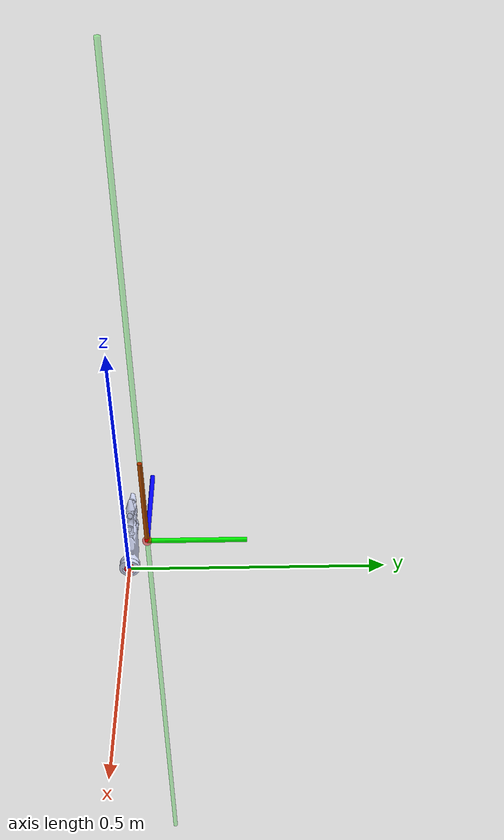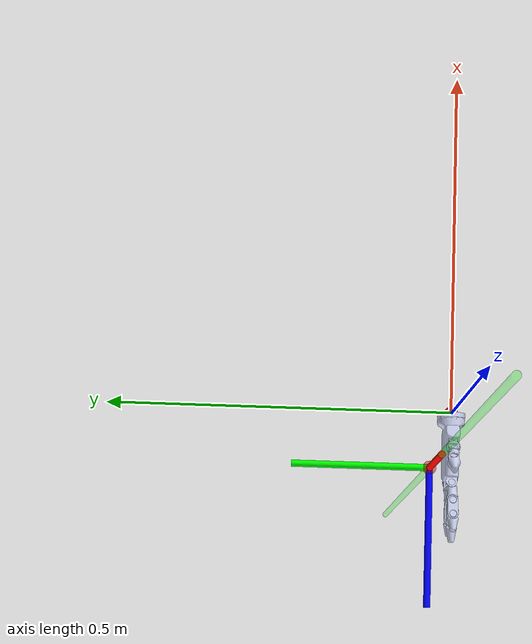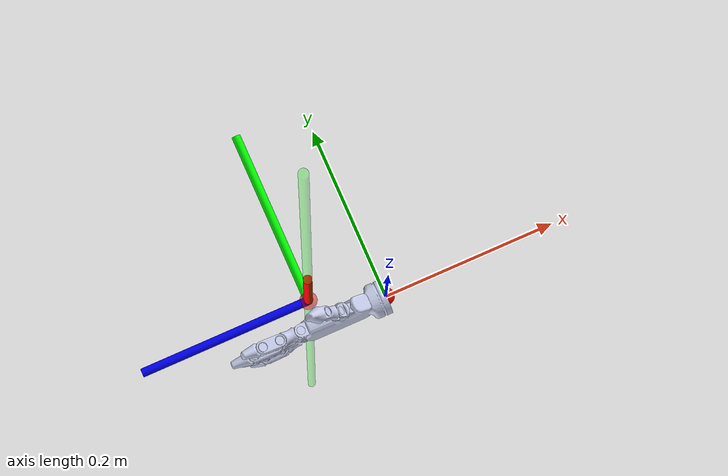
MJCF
<mujoco model="hand_left_sim">
    <compiler angle="radian" meshdir="/home/kavin/Documents/RosProjects/robot_ws/src/hand_left_sim/meshes/" />

    <default>
        <default class="joint">
            <position kp="8"/>
        </default>
    </default>

    <size njmax="500" nconmax="100" />
    <asset>
        <mesh name="palm_left" file="/home/kavin/Documents/RosProjects/robot_ws/src/hand_left_sim/meshes/palm_left.STL" />
        <mesh name="finger_11_left" file="/home/kavin/Documents/RosProjects/robot_ws/src/hand_left_sim/meshes/finger_11_left.STL" />
        <mesh name="finger_12_left" file="/home/kavin/Documents/RosProjects/robot_ws/src/hand_left_sim/meshes/finger_12_left.STL" />
        <mesh name="finger_13_left" file="/home/kavin/Documents/RosProjects/robot_ws/src/hand_left_sim/meshes/finger_13_left.STL" />
        <mesh name="finger_14_left" file="/home/kavin/Documents/RosProjects/robot_ws/src/hand_left_sim/meshes/finger_14_left.STL" />
        <mesh name="finger_21_left" file="/home/kavin/Documents/RosProjects/robot_ws/src/hand_left_sim/meshes/finger_21_left.STL" />
        <mesh name="finger_22_left" file="/home/kavin/Documents/RosProjects/robot_ws/src/hand_left_sim/meshes/finger_22_left.STL" />
        <mesh name="finger_23_left" file="/home/kavin/Documents/RosProjects/robot_ws/src/hand_left_sim/meshes/finger_23_left.STL" />
        <mesh name="finger_31_left" file="/home/kavin/Documents/RosProjects/robot_ws/src/hand_left_sim/meshes/finger_31_left.STL" />
        <mesh name="finger_32_left" file="/home/kavin/Documents/RosProjects/robot_ws/src/hand_left_sim/meshes/finger_32_left.STL" />
        <mesh name="finger_33_left" file="/home/kavin/Documents/RosProjects/robot_ws/src/hand_left_sim/meshes/finger_33_left.STL" />
        <mesh name="finger_41_left" file="/home/kavin/Documents/RosProjects/robot_ws/src/hand_left_sim/meshes/finger_41_left.STL" />
        <mesh name="finger_42_left" file="/home/kavin/Documents/RosProjects/robot_ws/src/hand_left_sim/meshes/finger_42_left.STL" />
        <mesh name="finger_43_left" file="/home/kavin/Documents/RosProjects/robot_ws/src/hand_left_sim/meshes/finger_43_left.STL" />
        <mesh name="finger_51_left" file="/home/kavin/Documents/RosProjects/robot_ws/src/hand_left_sim/meshes/finger_51_left.STL" />
        <mesh name="finger_52_left" file="/home/kavin/Documents/RosProjects/robot_ws/src/hand_left_sim/meshes/finger_52_left.STL" />
        <mesh name="finger_53_left" file="/home/kavin/Documents/RosProjects/robot_ws/src/hand_left_sim/meshes/finger_53_left.STL" />
    </asset>
    <worldbody>
        <body name="palm_left" quat="0.707105 0 -0.707108 0">
            <site name="ft_frame" pos="0 0 0" size="0.01 0.01 0.01" rgba="1 0 0 1" type="sphere" group="1" />
            <body name="eef" pos="0 0.03 0.08" >
                <site name="grip_site" pos="0 0 0" size="0.01 0.01 0.01" rgba="1 0 0 0.5" type="sphere" group="1"/>
                <site name="ee_x" pos="0.1 0 0" size="0.005 .1"  quat="0.707105  0 0.707108 0 " rgba="1 0 0 1" type="cylinder" group="1"/>
                <site name="ee_y" pos="0 0.1 0" size="0.005 .1" quat="0.707105 0.707108 0 0" rgba="0 1 0 1" type="cylinder" group="1"/>
                <site name="ee_z" pos="0 0 0.1" size="0.005 .1" quat="1 0 0 0" rgba="0 0 1 1" type="cylinder" group="1"/>
                <site name="grip_site_cylinder" pos="0 0 0" size="0.005 1" quat="0.707105  0 0.707108 0 " rgba="0 1 0 0.3" type="cylinder" group="1"/>
            </body>
            <inertial pos="0 0 0" mass="0.01" diaginertia="0.001 0.001 0.001"/>
            <geom type="mesh" contype="0" conaffinity="0" group="1" rgba="0.792157 0.819608 0.933333 1" mesh="palm_left" name="palm_left_visual" />
            <geom type="mesh" rgba="0.792157 0.819608 0.933333 1" mesh="palm_left" name="palm_left_collision" />
            <body name="finger_11_left" pos="0.033156 0 0.046854" quat="-3.23396e-06 -0.474195 1.74182e-06 -0.88042">
                <inertial pos="0 0 0.00296384" quat="0.707107 0 0 0.707107" mass="0.00158261" diaginertia="6.47978e-08 5.66929e-08 5.56708e-08" />
                <joint name="j_11_left" pos="0 0 0" axis="1 0 0" limited="true" range="-1.57 1.57" damping="0.01" armature="0.0002" frictionloss="0.01" />
                <geom type="mesh" contype="0" conaffinity="0" group="1" rgba="0.792157 0.819608 0.933333 1" mesh="finger_11_left" name="finger_11_left_visual" />
                <geom type="mesh" rgba="0.792157 0.819608 0.933333 1" mesh="finger_11_left" name="finger_11_left_collision" />
                <body name="finger_12_left" pos="0 0 0.005">
                    <inertial pos="3.89801e-11 -3.25373e-12 0.00925016" quat="0.707107 0 0 0.707107" mass="0.00237615" diaginertia="1.18675e-07 1.15819e-07 1.06634e-07" />
                    <joint name="j_12_left" axis="0 0 1" limited="true" range="-1.57 1.57" damping="0.01" armature="0.0002" frictionloss="0.01" />
                    <geom type="mesh" contype="0" conaffinity="0" group="1" rgba="0.792157 0.819608 0.933333 1" mesh="finger_12_left" name="finger_12_left_visual" />
                    <geom type="mesh" rgba="0.792157 0.819608 0.933333 1" mesh="finger_12_left" name="finger_12_left_collision" />
                    <body name="finger_13_left" pos="0 0.0001162 0.016272" quat="0.998888 0.0471535 0 0">
                        <inertial pos="-3.21624e-08 -2.51355e-07 0.0147548" quat="0.706869 4.57226e-06 -4.57534e-06 0.707344" mass="0.00477507" diaginertia="5.13037e-07 5.06539e-07 1.11818e-07" />
                        <joint name="j_13_left" axis="1 0 0" limited="true" range="-1.57 1.57" damping="0.01" armature="0.0002" frictionloss="0.01" />
                        <geom type="mesh" contype="0" conaffinity="0" group="1" rgba="0.792157 0.819608 0.933333 1" mesh="finger_13_left" name="finger_13_left_visual" />
                        <geom type="mesh" rgba="0.792157 0.819608 0.933333 1" mesh="finger_13_left" name="finger_13_left_collision" />
                        <body name="finger_14_left" pos="0 0 0.028233" quat="0.998888 -0.0471535 0 0">
                            <inertial pos="1.25827e-05 -0.000148504 0.0147394" quat="0.704718 0.00742825 -0.00610754 0.709423" mass="0.0045956" diaginertia="3.58606e-07 3.47268e-07 1.55217e-07" />
                            <joint name="j_14_left" axis="1 0 0" limited="true" range="-1.57 1.57" damping="0.01" armature="0.0002" frictionloss="0.01" />
                            <geom type="mesh" contype="0" conaffinity="0" group="1" rgba="0.792157 0.819608 0.933333 1" mesh="finger_14_left" name="finger_14_left_visual" />
                            <geom type="mesh" rgba="0.792157 0.819608 0.933333 1" mesh="finger_14_left" name="finger_14_left_collision" />
                        </body>
                    </body>
                </body>
            </body>
            <body name="finger_21_left" pos="0.02313 6.8436e-05 0.10261" quat="0.00406373 0.146484 -0.0274558 0.988824">
                <inertial pos="-3.37176e-08 -2.63089e-07 0.0147548" quat="0.706874 4.60798e-06 -4.61102e-06 0.70734" mass="0.00477507" diaginertia="5.13037e-07 5.06539e-07 1.11818e-07" />
                <joint name="j_21_left" pos="0 0 0" axis="1 0 0" limited="true" range="-1.57 1.57" damping="0.01" armature="0.0002" frictionloss="0.01" />
                <geom type="mesh" contype="0" conaffinity="0" group="1" rgba="0.792157 0.819608 0.933333 1" mesh="finger_21_left" name="finger_21_left_visual" />
                <geom type="mesh" rgba="0.792157 0.819608 0.933333 1" mesh="finger_21_left" name="finger_21_left_collision" />
                <body name="finger_22_left" pos="0 0 0.028233" quat="0.999615 0.0277559 0 0">
                    <inertial pos="0 0 0.0105" mass="0.00239726" diaginertia="1.69655e-07 1.65763e-07 9.58619e-08" />
                    <joint name="j_22_left" pos="0 0 0" axis="1 0 0" limited="true" range="-1.57 1.57" damping="0.01" armature="0.0002" frictionloss="0.01" />
                    <geom type="mesh" contype="0" conaffinity="0" group="1" rgba="0.792157 0.819608 0.933333 1" mesh="finger_22_left" name="finger_22_left_visual" />
                    <geom type="mesh" rgba="0.792157 0.819608 0.933333 1" mesh="finger_22_left" name="finger_22_left_collision" />
                    <body name="finger_23_left" pos="0 0 0.021">
                        <inertial pos="1.83784e-05 -3.04017e-05 0.0092181" quat="0.713531 0.00165371 0.000482778 0.700621" mass="0.00351084" diaginertia="2.40711e-07 2.34319e-07 7.61093e-08" />
                        <joint name="j_23_left" pos="0 0 0" axis="1 0 0" limited="true" range="-1.57 1.57" damping="0.01" armature="0.0002" frictionloss="0.01" />
                        <geom type="mesh" contype="0" conaffinity="0" group="1" rgba="0.792157 0.819608 0.933333 1" mesh="finger_23_left" name="finger_23_left_visual" />
                        <geom type="mesh" rgba="0.792157 0.819608 0.933333 1" mesh="finger_23_left" name="finger_23_left_collision" />
                    </body>
                </body>
            </body>
            <body name="finger_31_left" pos="0.003285 0.00012829 0.10551" quat="-3.66822e-06 1.91269e-07 -0.0520714 0.998643">
                <inertial pos="3.43995e-08 -2.32819e-07 0.0147121" quat="0.707342 -4.57282e-06 4.56978e-06 0.706872" mass="0.00477507" diaginertia="5.13037e-07 5.06539e-07 1.11818e-07" />
                <joint name="j_31_left" pos="0 0 0" axis="1 0 0" limited="true" range="-1.57 1.57" damping="0.01" armature="0.0002" frictionloss="0.01" />
                <geom type="mesh" contype="0" conaffinity="0" group="1" rgba="0.792157 0.819608 0.933333 1" mesh="finger_31_left" name="finger_31_left_visual" />
                <geom type="mesh" rgba="0.792157 0.819608 0.933333 1" mesh="finger_31_left" name="finger_31_left_collision" />
                <body name="finger_32_left" pos="0 0 0.028233" quat="0.998643 0.0520714 0 0">
                    <inertial pos="0 0 0.0125" mass="0.00316954" diaginertia="2.43247e-07 2.35819e-07 1.2078e-07" />
                    <joint name="j_32_left" pos="0 0 0" axis="1 0 0" limited="true" range="-1.57 1.57" damping="0.01" armature="0.0002" frictionloss="0.01" />
                    <geom type="mesh" contype="0" conaffinity="0" group="1" rgba="0.792157 0.819608 0.933333 1" mesh="finger_32_left" name="finger_32_left_visual" />
                    <geom type="mesh" rgba="0.792157 0.819608 0.933333 1" mesh="finger_32_left" name="finger_32_left_collision" />
                    <body name="finger_33_left" pos="0 0 0.025">
                        <inertial pos="1.9602e-05 -3.05214e-05 0.0109935" quat="0.713664 0.00131208 0.000488317 0.700487" mass="0.00407938" diaginertia="3.4499e-07 3.3759e-07 9.02118e-08" />
                        <joint name="j_33_left" pos="0 0 0" axis="1 0 0" limited="true" range="-1.57 1.57" damping="0.01" armature="0.0002" frictionloss="0.01" />
                        <geom type="mesh" contype="0" conaffinity="0" group="1" rgba="0.792157 0.819608 0.933333 1" mesh="finger_33_left" name="finger_33_left_visual" />
                        <geom type="mesh" rgba="0.792157 0.819608 0.933333 1" mesh="finger_33_left" name="finger_33_left_collision" />
                    </body>
                </body>
            </body>
            <body name="finger_41_left" pos="-0.015838 8.8878e-05 0.10369" quat="-0.00352722 -0.097685 -0.0358749 0.994564">
                <inertial pos="3.21683e-08 -2.33036e-07 0.0147121" quat="0.707344 -4.5752e-06 4.57212e-06 0.706869" mass="0.00477507" diaginertia="5.13037e-07 5.06539e-07 1.11818e-07" />
                <joint name="j_41_left" pos="0 0 0" axis="1 0 0" limited="true" range="-1.57 1.57" damping="0.01" armature="0.0002" frictionloss="0.01" />
                <geom type="mesh" contype="0" conaffinity="0" group="1" rgba="0.792157 0.819608 0.933333 1" mesh="finger_41_left" name="finger_41_left_visual" />
                <geom type="mesh" rgba="0.792157 0.819608 0.933333 1" mesh="finger_41_left" name="finger_41_left_collision" />
                <body name="finger_42_left" pos="0 0 0.028233" quat="0.99935 0.0360472 0 0">
                    <inertial pos="0 0 0.011" mass="0.00259033" diaginertia="1.86013e-07 1.81238e-07 1.02092e-07" />
                    <joint name="j_42_left" pos="0 0 0" axis="1 0 0" limited="true" range="-1.57 1.57" damping="0.01" armature="0.0002" frictionloss="0.01" />
                    <geom type="mesh" contype="0" conaffinity="0" group="1" rgba="0.792157 0.819608 0.933333 1" mesh="finger_42_left" name="finger_42_left_visual" />
                    <geom type="mesh" rgba="0.792157 0.819608 0.933333 1" mesh="finger_42_left" name="finger_42_left_collision" />
                    <body name="finger_43_left" pos="0 0 0.022">
                        <inertial pos="1.84528e-05 -3.04687e-05 0.00921809" quat="0.713452 0.00165546 0.000482432 0.700702" mass="0.00351082" diaginertia="2.40712e-07 2.34317e-07 7.61094e-08" />
                        <joint name="j_43_left" pos="0 0 0" axis="1 0 0" limited="true" range="-1.57 1.57" damping="0.01" armature="0.0002" frictionloss="0.01" />
                        <geom type="mesh" contype="0" conaffinity="0" group="1" rgba="0.792157 0.819608 0.933333 1" mesh="finger_43_left" name="finger_43_left_visual" />
                        <geom type="mesh" rgba="0.792157 0.819608 0.933333 1" mesh="finger_43_left" name="finger_43_left_collision" />
                    </body>
                </body>
            </body>
            <body name="finger_51_left" pos="-0.032209 0.00022415 0.09976" quat="0.0129037 0.140879 0.0903198 -0.985814">
                <inertial pos="3.21472e-08 -2.32981e-07 0.0147121" quat="0.707345 -4.5761e-06 4.57303e-06 0.706869" mass="0.00477507" diaginertia="5.13037e-07 5.06539e-07 1.11818e-07" />
                <joint name="j_51_left" pos="0 0 0" axis="1 0 0" limited="true" range="-1.57 1.57" damping="0.01" armature="0.0002" frictionloss="0.01" />
                <geom type="mesh" contype="0" conaffinity="0" group="1" rgba="0.792157 0.819608 0.933333 1" mesh="finger_51_left" name="finger_51_left_visual" />
                <geom type="mesh" rgba="0.792157 0.819608 0.933333 1" mesh="finger_51_left" name="finger_51_left_collision" />
                <body name="finger_52_left" pos="0 0 0.028233" quat="0.995829 0.0912379 0 0">
                    <inertial pos="0 0 0.01" mass="0.00220419" diaginertia="1.54494e-07 1.51487e-07 8.96323e-08" />
                    <joint name="j_52_left" pos="0 0 0" axis="1 0 0" limited="true" range="-1.57 1.57" damping="0.01" armature="0.0002" frictionloss="0.01" />
                    <geom type="mesh" contype="0" conaffinity="0" group="1" rgba="0.792157 0.819608 0.933333 1" mesh="finger_52_left" name="finger_52_left_visual" />
                    <geom type="mesh" rgba="0.792157 0.819608 0.933333 1" mesh="finger_52_left" name="finger_52_left_collision" />
                    <body name="finger_53_left" pos="0 0 0.02">
                        <inertial pos="1.79186e-05 -3.12775e-05 0.00785415" quat="0.712026 0.00206617 0.000431636 0.70215" mass="0.00308473" diaginertia="1.78801e-07 1.73043e-07 6.55997e-08" />
                        <joint name="j_53_left" pos="0 0 0" axis="1 0 0" limited="true" range="-1.57 1.57" damping="0.01" armature="0.0002" frictionloss="0.01" />
                        <geom type="mesh" contype="0" conaffinity="0" group="1" rgba="0.792157 0.819608 0.933333 1" mesh="finger_53_left" name="finger_53_left_visual" />
                        <geom type="mesh" rgba="0.792157 0.819608 0.933333 1" mesh="finger_53_left" name="finger_53_left_collision" />
                    </body>
                </body>
            </body>
        </body>
    </worldbody>

    <contact>
        <exclude body1="palm_left" body2="finger_11_left"/>
        <exclude body1="palm_left" body2="finger_12_left"/>
        <exclude body1="palm_left" body2="finger_21_left"/>
        <exclude body1="palm_left" body2="finger_31_left"/>
        <exclude body1="palm_left" body2="finger_41_left"/>
        <exclude body1="palm_left" body2="finger_51_left"/>
    </contact>

    <tendon>
        <fixed name="j_20_left">
          <joint joint="j_22_left" coef="1"/>
          <joint joint="j_23_left" coef="1"/>
        </fixed>
        <fixed name="j_30_left">
          <joint joint="j_32_left" coef="1"/>
          <joint joint="j_33_left" coef="1"/>
        </fixed>
        <fixed name="j_40_left">
          <joint joint="j_42_left" coef="1"/>
          <joint joint="j_43_left" coef="1"/>
        </fixed>
        <fixed name="j_50_left">
          <joint joint="j_52_left" coef="1"/>
          <joint joint="j_53_left" coef="1"/>
        </fixed>
    </tendon>

    <equality>
        <tendon name="j_20_left" tendon1="j_20_left"/>
        <tendon name="j_30_left" tendon1="j_30_left"/>
        <tendon name="j_40_left" tendon1="j_40_left"/>
        <tendon name="j_50_left" tendon1="j_50_left"/>
    </equality>

    <actuator>

        <position class="joint" name="j11_left_T" joint="j_11_left" ctrllimited="true" ctrlrange="0 1.57" />
        <position class="joint" name="j12_left_T" joint="j_12_left" ctrllimited="true" ctrlrange="0 1.57" />
        <position class="joint" name="j13_left_T" joint="j_13_left" ctrllimited="true" ctrlrange="0 0.5" />
        <position class="joint" name="j14_left_T" joint="j_14_left" ctrllimited="true" ctrlrange="0 1.0" />
        <position class="joint" name="j21_left_T" joint="j_21_left" ctrllimited="true" ctrlrange="0 1.57" />
        <position class="joint" name="j20_left_T" tendon="j_20_left" ctrllimited="true" ctrlrange="0 2.14" />
        <position class="joint" name="j31_left_T" joint="j_31_left" ctrllimited="true" ctrlrange="0 1.57" />
        <position class="joint" name="j30_left_T" tendon="j_30_left" ctrllimited="true" ctrlrange="0 2.14" />
        <position class="joint" name="j41_left_T" joint="j_41_left" ctrllimited="true" ctrlrange="0 1.57" />
        <position class="joint" name="j40_left_T" tendon="j_40_left" ctrllimited="true" ctrlrange="0 2.14" />
        <position class="joint" name="j51_left_T" joint="j_51_left" ctrllimited="true" ctrlrange="0 1.57" />
        <position class="joint" name="j50_left_T" tendon="j_50_left" ctrllimited="true" ctrlrange="0 2.14" />

    </actuator>
    <sensor>
        <force name="force_ee" site="ft_frame"/>
        <torque name="torque_ee" site="ft_frame"/>
    </sensor>
</mujoco>
